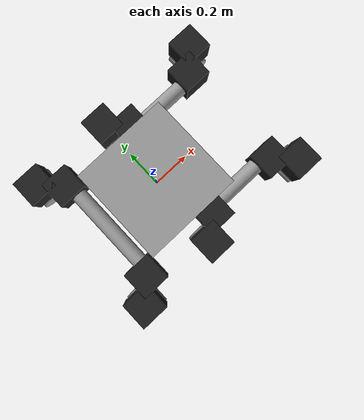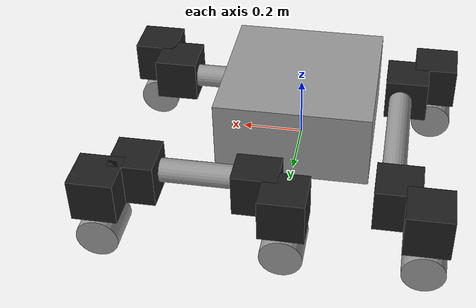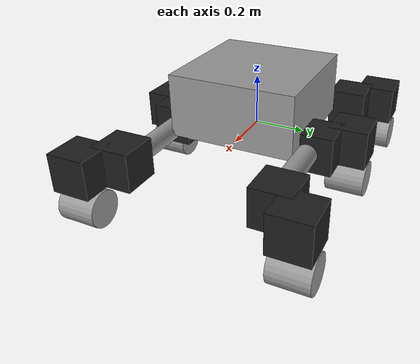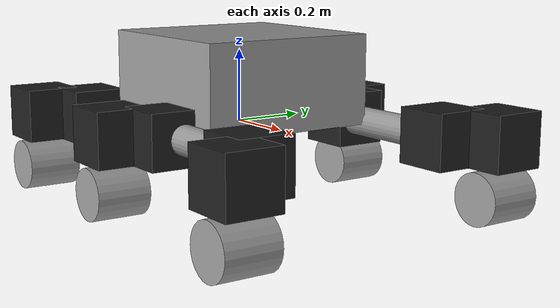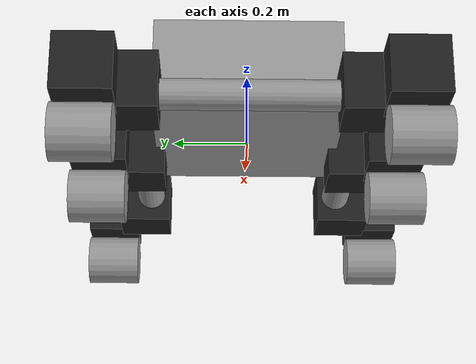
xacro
<?xml version="1.0"?>
<robot name="exoter" xmlns:xacro="http://www.ros.org/wiki/xacro">
  <xacro:property name="mass" value="1.0" />
  <xacro:property name="damping" value="0.1" />
  <xacro:property name="friction" value="0.1" />
  <xacro:property name="size_base" value="0.5" />
  <xacro:property name="size_link" value="0.15" />
  <xacro:property name="wheel_radius" value="${0.1425 / 2}" />
  <xacro:property name="variant" value="1.0" />

  <xacro:property name="limit_drive_effort" value="100.0" />
  <xacro:property name="limit_drive_velocity" value="1.0" />
  <xacro:property name="limit_steer_effort" value="100.0" />
  <xacro:property name="limit_steer_lower" value="${-pi / 2}" />
  <xacro:property name="limit_steer_upper" value="${pi / 2}" />
  <xacro:property name="limit_steer_velocity" value="1.0" />

  <xacro:property name="side_bogie_lower" value="${-pi / 4}" />
  <xacro:property name="side_bogie_upper" value="${pi / 4}" />

  <!-- Import all Gazebo-customization elements, including Gazebo colors and plugins -->
  <xacro:include filename="$(find rover_config)/urdf/marta.gazebo" />

  <!-- Base of the rover, must be named "base_link" -->
  <link name="base_link">
    <collision>
      <origin xyz="0 0 ${size_base / 4}" rpy="0 0 0"/>
      <geometry>
        <box size="${size_base} ${size_base} ${size_base / 2}"/>
      </geometry>
    </collision>
    <inertial>
       <mass value="${mass}"/>
        <inertia
            ixx="${mass / 12.0 * (5 * size_base * size_base / 16)}"
            iyy="${mass / 12.0 * (5 * size_base * size_base / 16)}"
            izz="${mass / 12.0 * (size_base * size_base / 2)}"
            ixy="0"
            ixz="0"
            iyz="0"/>
    </inertial>
    <visual>
      <origin xyz="0 0 ${size_base / 4}" rpy="0 0 0"/>
      <geometry>
        <box size="${size_base} ${size_base} ${size_base / 2}"/>
      </geometry>
    </visual>
  </link>

  <!-- Definition for a side bogie assembly -->
  <xacro:macro name="bogie" params="position *origin_bogie">

    <xacro:property name="bogie_link" value="link_bogie_${position}" />

    <joint name="joint_bogie_${position}" type="revolute">
      <parent link="base_link"/>
      <child link="link_bogie_${position}"/>
      <xacro:insert_block name="origin_bogie" />
      <limit effort="0" lower="${side_bogie_lower}" upper="${side_bogie_upper}" velocity="0"/>
      <axis xyz="0 0 1"/>
    </joint>

    <link name="link_bogie_${position}">
      <collision>
        <origin xyz="0 0 0.03" rpy="0 ${pi / 2} 0"/>
        <geometry>
          <cylinder length="0.5" radius="0.04"/>
        </geometry>
      </collision>

      <inertial>
        <mass value="${mass}"/>
        <inertia
              ixx="${mass / 12.0 * (size_link * size_link / 2)}"
              iyy="${mass / 12.0 * (size_link * size_link / 2)}"
              izz="${mass / 12.0 * (size_link * size_link / 2)}"
              ixy="0"
              ixz="0"
              iyz="0"/>
      </inertial>

      <visual>
        <origin xyz="0 0 0.03" rpy="0 ${pi / 2} 0"/>
        <geometry>
          <cylinder length="0.5" radius="0.04"/>
        </geometry>
      </visual>
    </link>

  </xacro:macro>

  <!-- Definition for a wheel assembly -->
  <!-- Driving direction is used to invert the direction of the deployment and driving joint -->
  <xacro:macro name="wheel_assembly" params="position bogie_name driving_direction str_type:=revolute *origin_DEP *origin_STR">
    <joint name="joint_DEP_${position}" type="revolute">
      <parent link="link_bogie_${bogie_name}"/>
      <child link="link_DEP_${position}"/>
      <limit effort="${limit_steer_effort}" lower="${limit_steer_lower}" upper="${limit_steer_upper}" velocity="${limit_steer_velocity}"/>
      <xacro:insert_block name="origin_DEP" />
      <axis xyz="0 0 ${driving_direction}"/>
      <dynamics damping="${damping}" friction="${friction}"/>
    </joint>

    <link name="link_DEP_${position}">
      <collision>
        <origin xyz="0 0 0" rpy="0 0 0"/>
        <geometry>
          <box size="${size_link} ${size_link} ${size_link}"/>
        </geometry>
      </collision>
      <inertial>
          <mass value="${mass}"/>
          <inertia
              ixx="${mass / 12.0 * (size_link * size_link / 2)}"
              iyy="${mass / 12.0 * (size_link * size_link / 2)}"
              izz="${mass / 12.0 * (size_link * size_link / 2)}"
              ixy="0"
              ixz="0"
              iyz="0"/>
      </inertial>
      <visual>
        <origin xyz="0 0 0" rpy="0 0 0"/>
        <geometry>
          <box size="${size_link} ${size_link} ${size_link}"/>
        </geometry>
      </visual>
    </link>

    <joint name="joint_STR_${position}" type="${str_type}">
      <parent link="link_DEP_${position}"/>
      <child link="link_STR_${position}"/>
      <limit effort="${limit_steer_effort}" lower="${limit_steer_lower}" upper="${limit_steer_upper}" velocity="${limit_steer_velocity}"/>
      <xacro:insert_block name="origin_STR" />
      <axis xyz="0 0 1"/>
      <dynamics damping="${damping}" friction="${friction}"/>
    </joint>

    <link name="link_STR_${position}">
      <collision>
        <origin xyz="0 0 0" rpy="0 0 0"/>
        <geometry>
          <box size="${size_link} ${size_link} ${size_link}"/>
        </geometry>
      </collision>
      <inertial>
          <mass value="${mass}"/>
          <inertia
              ixx="${mass / 12.0 * (size_link * size_link / 2)}"
              iyy="${mass / 12.0 * (size_link * size_link / 2)}"
              izz="${mass / 12.0 * (size_link * size_link / 2)}"
              ixy="0"
              ixz="0"
              iyz="0"/>
      </inertial>
      <visual>
        <origin xyz="0 0 0" rpy="0 0 0"/>
        <geometry>
          <box size="${size_link} ${size_link} ${size_link}"/>
        </geometry>
      </visual>
    </link>

    <joint name="joint_DRV_${position}" type="continuous">
      <parent link="link_STR_${position}"/>
      <child link="link_DRV_${position}"/>
      <limit effort="${limit_drive_effort}" velocity="${limit_drive_velocity}"/>
      <origin xyz="0 0 ${-size_link / 2 - 1.1 * wheel_radius}" rpy="-1.57 0 0"/>
      <axis xyz="0 0 ${driving_direction}"/>
      <dynamics damping="${damping}" friction="${friction}"/>
    </joint>

    <link name="link_DRV_${position}">
      <collision>
        <origin xyz="0 0 0" rpy="0 0 0"/>
        <geometry>
          <cylinder length="${size_link}" radius="${wheel_radius}"/>
        </geometry>
      </collision>
      <inertial>
          <mass value="${mass}"/>
          <inertia
              ixx="${mass / 12.0 * (3 * wheel_radius * wheel_radius + size_link * size_link)}"
              iyy="${mass / 12.0 * (3 * wheel_radius * wheel_radius + size_link * size_link)}"
              izz="${mass / 2.0 * wheel_radius * wheel_radius}"
              ixy="0"
              ixz="0"
              iyz="0"/>
      </inertial>
      <visual>
        <origin xyz="0 0 0" rpy="0 0 0"/>
        <geometry>
          <cylinder length="${size_link}" radius="${wheel_radius}"/>
        </geometry>
      </visual>
    </link>

    <transmission name="_STR_${position}">
      <type>transmission_interface/SimpleTransmission</type>
      <joint name="joint_STR_${position}">
        <hardwareInterface>hardware_interface/EffortJointInterface</hardwareInterface>
      </joint>
      <actuator name="motor_STR_${position}">
        <mechanicalReduction>1</mechanicalReduction>
      </actuator>
    </transmission>

    <transmission name="transmission_DRV_${position}">
      <type>transmission_interface/SimpleTransmission</type>
      <joint name="joint_DRV_${position}">
        <hardwareInterface>hardware_interface/EffortJointInterface</hardwareInterface>
      </joint>
      <actuator name="motor_DRV_${position}">
        <mechanicalReduction>1</mechanicalReduction>
      </actuator>
    </transmission>
  </xacro:macro>

  <!-- Define all the wheel assemblies & bogies. Set their positions -->
  <!-- LEFT BOGIE  -->
  <xacro:property name="side_bogie_left_name" value="LFB" />

  <xacro:bogie position="${side_bogie_left_name}">
    <origin xyz="0.3 ${size_base / 2} 0" rpy="${- pi / 2} 0 0"/>
  </xacro:bogie>

  <xacro:wheel_assembly position="LF" bogie_name="${side_bogie_left_name}" driving_direction="1">
    <origin xyz="0.2 0 0.05" rpy="0 0 0"/>
    <origin xyz="0.1 0 0.1" rpy="${pi / 2} 0 0"/>
  </xacro:wheel_assembly>

  <xacro:wheel_assembly position="LM" bogie_name="${side_bogie_left_name}" driving_direction="1" str_type="fixed">
    <origin xyz="-0.2 0 0.05" rpy="0 0 0"/>
    <origin xyz="-0.1 0 0.1" rpy="${pi / 2} 0 0"/>
  </xacro:wheel_assembly>

  <!-- RIGHT BOGIE  -->
  <xacro:property name="side_bogie_right_name" value="RFB" />

  <xacro:bogie position="${side_bogie_right_name}">
    <origin xyz="0.3 -${size_base / 2} 0" rpy="${- pi / 2} 0 ${pi}"/>
  </xacro:bogie>

  <xacro:wheel_assembly position="RF" bogie_name="${side_bogie_right_name}" driving_direction="-1">
    <origin xyz="-0.2 0 0.05" rpy="0 0 0"/>
    <origin xyz="-0.1 0 0.1" rpy="${pi / 2} 0 0"/>
  </xacro:wheel_assembly>

  <xacro:wheel_assembly position="RM" bogie_name="${side_bogie_right_name}" driving_direction="-1" str_type="fixed">
    <origin xyz="0.2 0 0.05" rpy="0 0 0"/>
    <origin xyz="0.1 0 0.1" rpy="${pi / 2} 0 0"/>
  </xacro:wheel_assembly>

  <!-- REAR BOGIE  -->
  <xacro:property name="side_bogie_rear_name" value="MRB" />

  <xacro:bogie position="${side_bogie_rear_name}">
    <origin xyz="-${size_base / 2 + 0.05} 0 0" rpy="${- pi / 2} 0 ${pi / 2}"/>
  </xacro:bogie>

  <xacro:wheel_assembly position="LR" bogie_name="${side_bogie_rear_name}" driving_direction="1">
    <origin xyz="0.3 0 0.05" rpy="0 ${pi / 2} 0"/>
    <origin xyz="-0.1 0 0.1" rpy="${pi / 2} 0 0"/>
  </xacro:wheel_assembly>

  <xacro:wheel_assembly position="RR" bogie_name="${side_bogie_rear_name}" driving_direction="-1">
    <origin xyz="-0.3 0 0.05" rpy="0 ${3 * pi / 2} 0"/>
    <origin xyz="0.1 0 0.1" rpy="${pi / 2} 0 0"/>
  </xacro:wheel_assembly>

</robot>
